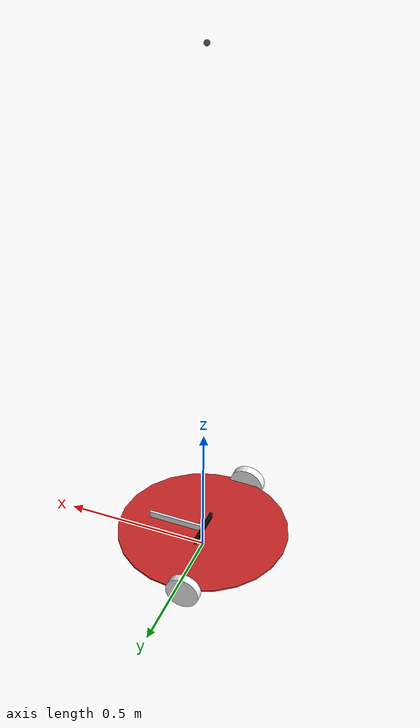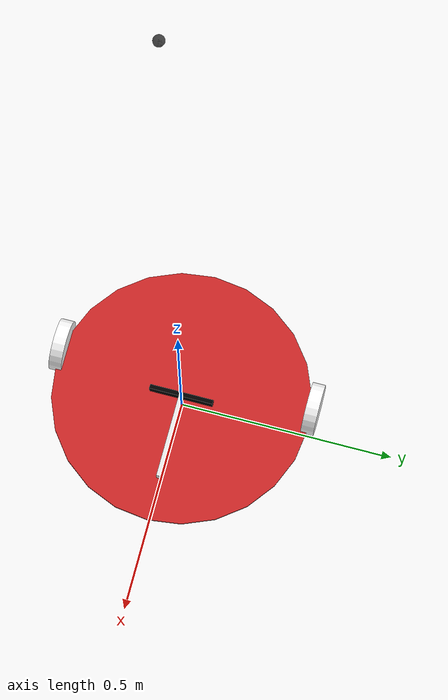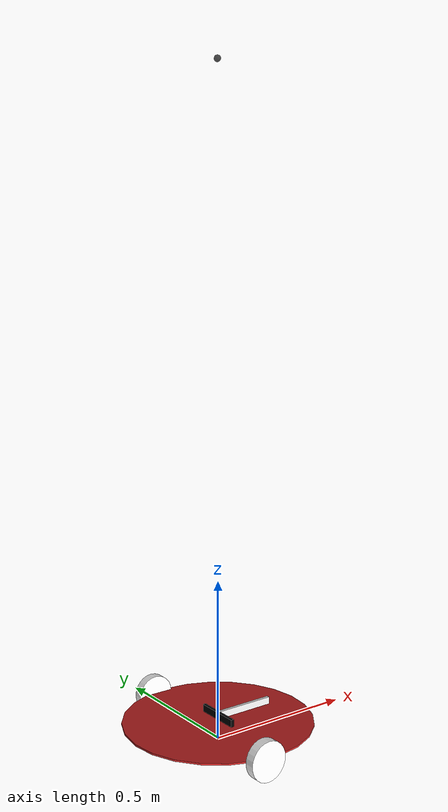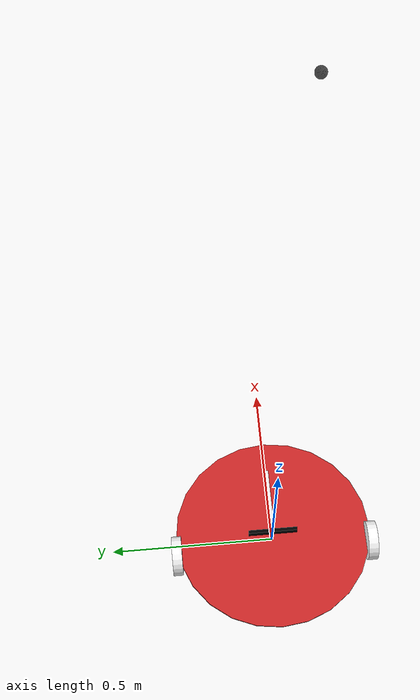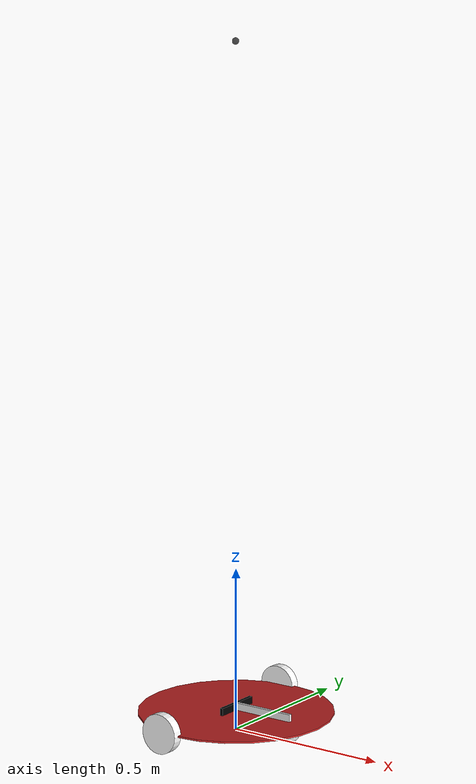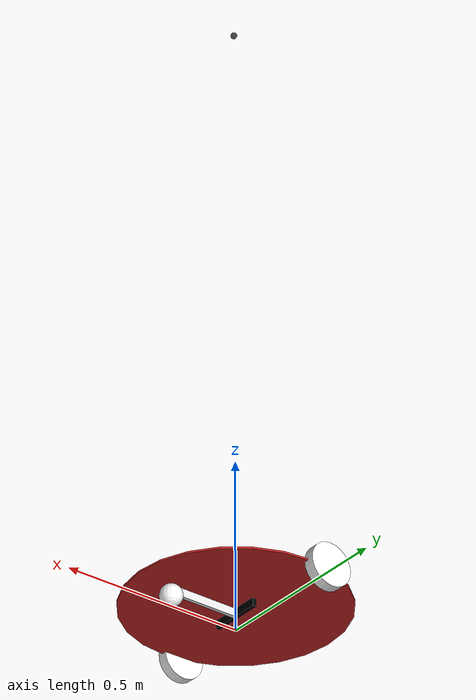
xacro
<?xml version="1.0"?>

<robot name="mrobot" xmlns:xacro="http://www.ros.org/wiki/xacro">

	<xacro:include filename="$(find avp_mapping)/simulation/robot/robot_body.urdf.xacro" />
    <!--调用xarco定义的宏-->
    <robot_body/>

	<link name="camera0_link">
        <visual>
          <origin xyz=" 0 0 0 " rpy="0 0 0" />
          <geometry>
          <sphere radius="0.01" />
          </geometry>
          <material name="black">
          <color rgba="0 0 0 0.95"/>
          </material>
        </visual>
    </link>

	<joint name="realsense_frame_joint" type="fixed">
		<origin xyz="0 0 2.0" rpy="0 0.25 0" />
		<parent link="base_link"/>
		<child link="camera0_link"/>
	</joint>

  <link name="camera1_link">
      <visual>
        <origin xyz=" 0 0 0 " rpy="0 0 0" />
        <geometry>
        <sphere radius="0.01" />
        </geometry>
        <material name="black">
        <color rgba="0 0 0 0.95"/>
        </material>
      </visual>
      </link>

      <joint name="camera1_joint" type="fixed">
        <origin xyz="0.00 0 2.0" rpy="0 0.25 1.0471975511965976"/>
        <parent link="base_link"/>
        <child link="camera1_link"/>
  </joint>

  <link name="camera2_link">
        <visual>
          <origin xyz=" 0 0 0 " rpy="0 0 0" />
          <geometry>
          <sphere radius="0.01" />
          </geometry>
          <material name="black">
          <color rgba="0 0 0 0.95"/>
          </material>
        </visual>
        </link>

        <joint name="camera2_joint" type="fixed">
          <origin xyz="0.00 0 2.0" rpy="0 0.25 2.0943951023931953"/>
          <parent link="base_link"/>
          <child link="camera2_link"/>
  </joint>

  <link name="camera3_link">
          <visual>
            <origin xyz=" 0 0 0 " rpy="0 0 0" />
            <geometry>
            <sphere radius="0.01" />
            </geometry>
            <material name="black">
            <color rgba="0 0 0 0.95"/>
            </material>
          </visual>
          </link>

          <joint name="camera3_joint" type="fixed">
            <origin xyz="0.00 0 2.0" rpy="0 0.25 3.141592653589793"/>
            <parent link="base_link"/>
            <child link="camera3_link"/>
          </joint>

          <link name="camera4_link">
            <visual>
              <origin xyz=" 0 0 0 " rpy="0 0 0" />
              <geometry>
              <sphere radius="0.01" />
              </geometry>
              <material name="black">
              <color rgba="0 0 0 0.95"/>
              </material>
            </visual>
            </link>

            <joint name="camera4_joint" type="fixed">
              <origin xyz="0.00 0 2.0" rpy="0 0.25 -2.0943951023931953"/>
              <parent link="base_link"/>
              <child link="camera4_link"/>
  </joint>

  <link name="camera5_link">
              <visual>
                <origin xyz=" 0 0 0 " rpy="0 0 0" />
                <geometry>
                <sphere radius="0.01" />
                </geometry>
                <material name="black">
                <color rgba="0 0 0 0.95"/>
                </material>
              </visual>
              </link>

              <joint name="camera5_joint" type="fixed">
                <origin xyz="0.00 0 2.0" rpy="0 0.25 -1.0471975511965976 "/>
                <parent link="base_link"/>
                <child link="camera5_link"/>
  </joint>

  <gazebo reference="camera0_link">
    <sensor type="camera" name="camera0">
      <update_rate>30.0</update_rate>
      <camera name="head">
        <horizontal_fov>1.3962634</horizontal_fov>
        <image>
          <width>800</width>
          <height>800</height>
          <format>R8G8B8</format>
        </image>
        <clip>
          <near>0.02</near>
          <far>300</far>
        </clip>
        <noise>
          <type>gaussian</type>
          <!-- Noise is sampled independently per pixel on each frame.
               That pixel's noise value is added to each of its color
               channels, which at that point lie in the range [0,1]. -->
          <mean>0.0</mean>
          <stddev>0.0001</stddev>
        </noise>
      </camera>
      <plugin name="camera_controller" filename="libgazebo_ros_camera.so">
        <alwaysOn>true</alwaysOn>
        <updateRate>0.0</updateRate>
        <cameraName>camera0</cameraName>
        <imageTopicName>color/image_raw</imageTopicName>
        <cameraInfoTopicName>camera_info</cameraInfoTopicName>
        <frameName>camera0_link</frameName>
        <hackBaseline>0.07</hackBaseline>
        <distortionK1>0.0</distortionK1>
        <distortionK2>0.0</distortionK2>
        <distortionK3>0.0</distortionK3>
        <distortionT1>0.0</distortionT1>
        <distortionT2>0.0</distortionT2>
      </plugin>
    </sensor>
  </gazebo>

  <gazebo reference="camera1_link">
    <sensor type="camera" name="camera1">
      <update_rate>30.0</update_rate>
      <camera name="head">
        <horizontal_fov>1.3962634</horizontal_fov>
        <image>
          <width>800</width>
          <height>800</height>
          <format>R8G8B8</format>
        </image>
        <clip>
          <near>0.02</near>
          <far>300</far>
        </clip>
        <noise>
          <type>gaussian</type>
          <!-- Noise is sampled independently per pixel on each frame.
               That pixel's noise value is added to each of its color
               channels, which at that point lie in the range [0,1]. -->
          <mean>0.0</mean>
          <stddev>0.001</stddev>
        </noise>
      </camera>
      <plugin name="camera_controller" filename="libgazebo_ros_camera.so">
        <alwaysOn>true</alwaysOn>
        <updateRate>0.0</updateRate>
        <cameraName>camera1</cameraName>
        <imageTopicName>color/image_raw</imageTopicName>
        <cameraInfoTopicName>camera_info</cameraInfoTopicName>
        <frameName>camera1_link</frameName>
        <hackBaseline>0.07</hackBaseline>
        <distortionK1>0.0</distortionK1>
        <distortionK2>0.0</distortionK2>
        <distortionK3>0.0</distortionK3>
        <distortionT1>0.0</distortionT1>
        <distortionT2>0.0</distortionT2>
      </plugin>
    </sensor>
  </gazebo>

  <gazebo reference="camera2_link">
    <sensor type="camera" name="camera2">
      <update_rate>30.0</update_rate>
      <camera name="head">
        <horizontal_fov>1.3962634</horizontal_fov>
        <image>
          <width>800</width>
          <height>800</height>
          <format>R8G8B8</format>
        </image>
        <clip>
          <near>0.02</near>
          <far>300</far>
        </clip>
        <noise>
          <type>gaussian</type>
          <!-- Noise is sampled independently per pixel on each frame.
               That pixel's noise value is added to each of its color
               channels, which at that point lie in the range [0,1]. -->
          <mean>0.0</mean>
          <stddev>0.001</stddev>
        </noise>
      </camera>
      <plugin name="camera_controller" filename="libgazebo_ros_camera.so">
        <alwaysOn>true</alwaysOn>
        <updateRate>0.0</updateRate>
        <cameraName>camera2</cameraName>
        <imageTopicName>color/image_raw</imageTopicName>
        <cameraInfoTopicName>camera_info</cameraInfoTopicName>
        <frameName>camera2_link</frameName>
        <hackBaseline>0.07</hackBaseline>
        <distortionK1>0.0</distortionK1>
        <distortionK2>0.0</distortionK2>
        <distortionK3>0.0</distortionK3>
        <distortionT1>0.0</distortionT1>
        <distortionT2>0.0</distortionT2>
      </plugin>
    </sensor>
  </gazebo>

  <gazebo reference="camera3_link">
    <sensor type="camera" name="camera3">
      <update_rate>30.0</update_rate>
      <camera name="head">
        <horizontal_fov>1.3962634</horizontal_fov>
        <image>
          <width>800</width>
          <height>800</height>
          <format>R8G8B8</format>
        </image>
        <clip>
          <near>0.02</near>
          <far>300</far>
        </clip>
        <noise>
          <type>gaussian</type>
          <!-- Noise is sampled independently per pixel on each frame.
               That pixel's noise value is added to each of its color
               channels, which at that point lie in the range [0,1]. -->
          <mean>0.0</mean>
          <stddev>0.001</stddev>
        </noise>
      </camera>
      <plugin name="camera_controller" filename="libgazebo_ros_camera.so">
        <alwaysOn>true</alwaysOn>
        <updateRate>0.0</updateRate>
        <cameraName>camera3</cameraName>
        <imageTopicName>color/image_raw</imageTopicName>
        <cameraInfoTopicName>camera_info</cameraInfoTopicName>
        <frameName>camera3_link</frameName>
        <hackBaseline>0.07</hackBaseline>
        <distortionK1>0.0</distortionK1>
        <distortionK2>0.0</distortionK2>
        <distortionK3>0.0</distortionK3>
        <distortionT1>0.0</distortionT1>
        <distortionT2>0.0</distortionT2>
      </plugin>
    </sensor>
  </gazebo>

  <gazebo reference="camera4_link">
    <sensor type="camera" name="camera4">
      <update_rate>30.0</update_rate>
      <camera name="head">
        <horizontal_fov>1.3962634</horizontal_fov>
        <image>
          <width>800</width>
          <height>800</height>
          <format>R8G8B8</format>
        </image>
        <clip>
          <near>0.02</near>
          <far>300</far>
        </clip>
        <noise>
          <type>gaussian</type>
          <!-- Noise is sampled independently per pixel on each frame.
               That pixel's noise value is added to each of its color
               channels, which at that point lie in the range [0,1]. -->
          <mean>0.0</mean>
          <stddev>0.001</stddev>
        </noise>
      </camera>
      <plugin name="camera_controller" filename="libgazebo_ros_camera.so">
        <alwaysOn>true</alwaysOn>
        <updateRate>0.0</updateRate>
        <cameraName>camera4</cameraName>
        <imageTopicName>color/image_raw</imageTopicName>
        <cameraInfoTopicName>camera_info</cameraInfoTopicName>
        <frameName>camera4_link</frameName>
        <hackBaseline>0.07</hackBaseline>
        <distortionK1>0.0</distortionK1>
        <distortionK2>0.0</distortionK2>
        <distortionK3>0.0</distortionK3>
        <distortionT1>0.0</distortionT1>
        <distortionT2>0.0</distortionT2>
      </plugin>
    </sensor>
  </gazebo>

  <gazebo reference="camera5_link">
    <sensor type="camera" name="camera5">
      <update_rate>30.0</update_rate>
      <camera name="head">
        <horizontal_fov>1.3962634</horizontal_fov>
        <image>
          <width>800</width>
          <height>800</height>
          <format>R8G8B8</format>
        </image>
        <clip>
          <near>0.02</near>
          <far>300</far>
        </clip>
        <noise>
          <type>gaussian</type>
          <!-- Noise is sampled independently per pixel on each frame.
               That pixel's noise value is added to each of its color
               channels, which at that point lie in the range [0,1]. -->
          <mean>0.0</mean>
          <stddev>0.001</stddev>
        </noise>
      </camera>
      <plugin name="camera_controller" filename="libgazebo_ros_camera.so">
        <alwaysOn>true</alwaysOn>
        <updateRate>0.0</updateRate>
        <cameraName>camera5</cameraName>
        <imageTopicName>color/image_raw</imageTopicName>
        <cameraInfoTopicName>camera_info</cameraInfoTopicName>
        <frameName>camera5_link</frameName>
        <hackBaseline>0.07</hackBaseline>
        <distortionK1>0.0</distortionK1>
        <distortionK2>0.0</distortionK2>
        <distortionK3>0.0</distortionK3>
        <distortionT1>0.0</distortionT1>
        <distortionT2>0.0</distortionT2>
      </plugin>
    </sensor>
  </gazebo>

</robot>

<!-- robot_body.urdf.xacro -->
<robot name="robot" xmlns:xacro="http://www.ros.org/wiki/xacro">

    <!-- Defining the colors used in this robot -->
    <material name="Black">
        <color rgba="0 0 0 1"/>
    </material>

    <material name="White">
        <color rgba="1 1 1 1"/>
    </material>

    <material name="Blue">
        <color rgba="0 0 1 1"/>
    </material>

    <material name="Red">
        <color rgba="1 0 0 1"/>
    </material>

    <!-- PROPERTY LIST -->
    <!--All units in m-kg-s-radians unit system -->
    <xacro:property name="M_PI" value="3.1415926535897931" />

    <!-- Main body length, width, height and mass -->
    <xacro:property name="base_mass"        value="0.5" />
    <xacro:property name="base_link_radius" value="0.3"/>
    <xacro:property name="base_link_length" value="0.005"/>

    <xacro:property name="motor_x" value="-0.05"/>

    <!-- Caster radius and mass -->
    <xacro:property name="caster_radius"          value="0.03" />
    <xacro:property name="caster_mass"            value="0.01" />
    <xacro:property name="caster_joint_origin_x"  value="-0.2" />

    <!-- Wheel radius, height and mass -->
    <xacro:property name="wheel_radius" value="0.06" />
    <xacro:property name="wheel_height" value="0.03" />
    <xacro:property name="wheel_mass"   value="0.1" />

    <!-- Macro for inertia matrix -->
    <xacro:macro name="sphere_inertial_matrix" params="m r">
        <inertial>
            <mass value="${m}" />
            <inertia ixx="${2*m*r*r/5}" ixy="0" ixz="0"
                iyy="${2*m*r*r/5}" iyz="0"
                izz="${2*m*r*r/5}" />
        </inertial>
    </xacro:macro>

    <xacro:macro name="cylinder_inertial_matrix" params="m r h">
        <inertial>
            <mass value="${m}" />
            <inertia ixx="${m*(3*r*r+h*h)/12}" ixy = "0" ixz = "0"
                iyy="${m*(3*r*r+h*h)/12}" iyz = "0"
                izz="${m*r*r/2}" />
        </inertial>
    </xacro:macro>

    <xacro:macro name="box_inertial_matrix" params="m w h d">
        <inertial>
            <mass value="${m}" />
            <inertia ixx="${m*(h*h+d*d)/12}" ixy = "0" ixz = "0"
                iyy="${m*(w*w+d*d)/12}" iyz = "0"
                izz="${m*(w*w+h*h)/12}" />
        </inertial>
    </xacro:macro>

    <!-- Macro for wheel joint -->
    <xacro:macro name="wheel" params="lr translateY">
        <!-- lr: left, right -->
        <link name="wheel_${lr}_link">
            <visual>
                <origin xyz="0 0 0" rpy="${M_PI/2} 0  0 " />
                <geometry>
                    <cylinder length="${wheel_height}" radius="${wheel_radius}" />
                </geometry>
                <material name="White" />
            </visual>
            <collision>
                <origin xyz="0 0 0" rpy="${M_PI/2} 0 0 " />
                <geometry>
                    <cylinder length="${wheel_height}" radius="${wheel_radius}" />
                </geometry>
            </collision>
            <cylinder_inertial_matrix  m="${wheel_mass}" r="${wheel_radius}" h="${wheel_height}" />
        </link>

        <gazebo reference="wheel_${lr}_link">
            <material>Gazebo/White</material>
        </gazebo>

        <joint name="base_to_wheel_${lr}_joint" type="continuous">
            <parent link="base_link"/>
            <child link="wheel_${lr}_link"/>
            <origin xyz="${motor_x} ${translateY * base_link_radius} 0" rpy="0 0 0" />
            <axis xyz="0 1 0" rpy="0  0" />
        </joint>

        <!-- Transmission is important to link the joints and the controller -->
        <transmission name="wheel_${lr}_joint_trans">
            <type>transmission_interface/SimpleTransmission</type>
            <joint name="base_to_wheel_${lr}_joint" />
            <actuator name="wheel_${lr}_joint_motor">
                <hardwareInterface>VelocityJointInterface</hardwareInterface>
                <mechanicalReduction>1</mechanicalReduction>
            </actuator>
        </transmission>
    </xacro:macro>

    <!-- Macro for caster joint -->
    <xacro:macro name="caster" params="fb translateX">
        <!-- fb: front, back -->
        <link name="${fb}_caster_link">
            <visual>
                <origin xyz="0 0 0 " rpy="0 0 0" />
                <geometry>
                    <sphere radius="${caster_radius}" />
                </geometry>
                <material name="White" />
            </visual>
            <collision>
                <geometry>
                    <sphere radius="${caster_radius}" />
                </geometry>
                <origin xyz="0 0 0 " rpy="0 0 0" />
            </collision>
            <sphere_inertial_matrix  m="${caster_mass}" r="${caster_radius}" />
        </link>

        <gazebo reference="${fb}_caster_link">
            <material>Gazebo/White</material>
        </gazebo>

        <joint name="base_to_${fb}_caster_joint" type="fixed">
            <parent link="base_link"/>
            <child link="${fb}_caster_link"/>
            <origin xyz="${translateX*caster_joint_origin_x} 0 ${-caster_radius}" rpy="0 0 0"/>
        </joint>
    </xacro:macro>

    <!-- BASE-FOOTPRINT -->
    <!-- base_footprint is a fictitious link(frame) that is on the ground right below base_link origin -->
    <xacro:macro name="robot_body">
        <link name="base_footprint">
            <visual>
                <origin xyz="0 0 0" rpy="0 0 0" />
                <geometry>
                    <box size="0.001 0.001 0.001" />
                </geometry>
            </visual>
        </link>

        <joint name="base_footprint_joint" type="fixed">
            <origin xyz="0 0 ${wheel_radius}" rpy="0 0 0" />
            <parent link="base_footprint"/>
            <child link="base_link" />
        </joint>

        <!-- BASE-LINK -->
        <!--Actual body/chassis of the robot-->
        <link name="base_link">
            <cylinder_inertial_matrix  m="${base_mass}" r="${base_link_radius}" h="${base_link_length}" />
            <visual>
                <origin xyz=" 0 0 0" rpy="0 0 0" />
                <geometry>
                    <cylinder length="${base_link_length}" radius="${base_link_radius}"/>
                </geometry>
                <material name="red" />
            </visual>

            <collision>
                <origin xyz="0 0 0" rpy="0 0 0" />
                <geometry>
                    <cylinder length="${base_link_length}" radius="${base_link_radius}"/>
                </geometry>
            </collision>
        </link>
        <gazebo reference="base_link">
            <material>Gazebo/Red</material>
        </gazebo>

        <!-- Wheel Definitions -->
        <wheel lr="right"  translateY="1" />
        <wheel lr="left"  translateY="-1" />

        <!-- Casters Definitions -->
        <caster fb="front"  translateX="-1" />

        <link name="xMark_link">
          <visual>
             <origin xyz=" 0 0 0 " rpy="0 0 0" />
             <geometry>
                    <box size="0.2 0.01 0.05" />
             </geometry>
             <material name="white" />
          </visual>
        </link>
         <gazebo reference="xMark_link">
            <material>Gazebo/White</material>
        </gazebo>

	   <joint name="xMark" type="fixed">
		   <origin xyz="0.1 0 0.0" rpy="0 0 0" />
		   <parent link="base_link"/>
	  	   <child link="xMark_link"/>
	   </joint>

        <link name="yMark_link">
          <visual>
             <origin xyz=" 0 0 0 " rpy="0 0 0" />
             <geometry>
                    <box size="0.01 0.15 0.05" />
             </geometry>
             <material name="black" />
          </visual>
        </link>
         <gazebo reference="yMark_link">
            <material>Gazebo/Black</material>
        </gazebo>

	   <joint name="yMark" type="fixed">
		   <origin xyz="0.0 0.0 0.0" rpy="0 0 0" />
		   <parent link="base_link"/>
	  	   <child link="yMark_link"/>
	   </joint>

        <!-- controller -->
        <gazebo>
            <plugin name="differential_drive_controller" filename="libgazebo_ros_diff_drive.so">
                <rosDebugLevel>Debug</rosDebugLevel>
                <publishWheelTF>true</publishWheelTF>
                <robotNamespace>/</robotNamespace>
                <publishTf>1</publishTf>
                <publishWheelJointState>true</publishWheelJointState>
                <alwaysOn>true</alwaysOn>
                <updateRate>100.0</updateRate>
                <legacyMode>true</legacyMode>
                <leftJoint>base_to_wheel_left_joint</leftJoint>
                <rightJoint>base_to_wheel_right_joint</rightJoint>
                <wheelSeparation>${base_link_radius*2}</wheelSeparation>
                <wheelDiameter>${2*wheel_radius}</wheelDiameter>
                <broadcastTF>1</broadcastTF>
                <wheelTorque>30</wheelTorque>
                <wheelAcceleration>1.8</wheelAcceleration>
                <commandTopic>cmd_vel</commandTopic>
                <odometryFrame>odom</odometryFrame>
                <odometryTopic>odom</odometryTopic>
                <robotBaseFrame>base_footprint</robotBaseFrame>
            </plugin>
        </gazebo>

        <gazebo>
            <plugin name="imu_plugin" filename="libgazebo_ros_imu.so">
                <alwaysOn>true</alwaysOn>
                <bodyName>base_footprint</bodyName>
                <topicName>imu</topicName>
                <serviceName>imu_service</serviceName>
                <gaussianNoise>0.0</gaussianNoise>
                <updateRate>50.0</updateRate>
            </plugin>
        </gazebo>

    </xacro:macro>
</robot>
